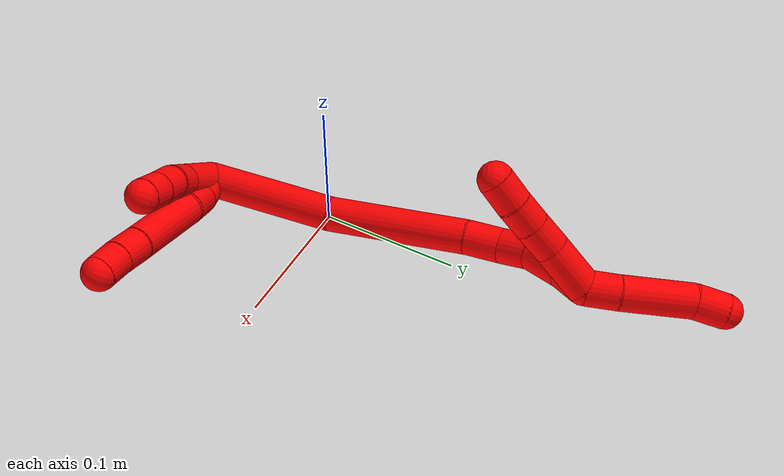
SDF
<sdf version="1.7">
 <world name="default">
  <model name="2">
   <static>0</static>
   <link name="2">
    <collision name="collision-cylinder-e_1_2_8">
     <pose>0.007385 0.0078 0.00383 -1.11438 0.704452 -0.45024</pose>
     <geometry><cylinder><radius>0.0125</radius><length>0.022808</length></cylinder></geometry>
     <surface>
      <friction><ode><mu>1.16</mu><mu2>1.16</mu2><slip1>0</slip1><slip2>0</slip2></ode></friction>
      <contact><ode><kp>1e+06</kp><kd>1</kd><max_vel>0</max_vel><min_depth>0.001</min_depth></ode></contact>
     </surface>
    </collision>
    <visual name="visual-cylinder-e_1_2_8">
     <pose>0.007385 0.0078 0.00383 -1.11438 0.704452 -0.45024</pose>
     <geometry><cylinder><radius>0.0125</radius><length>0.022808</length></cylinder></geometry>
     <material><ambient>1 0 0 1</ambient></material>
    </visual>
    <collision name="collision-cylinder-e_2_8_9">
     <pose>0.019351 0.02503 0.013365 -1.02669 0.393819 -0.223991</pose>
     <geometry><cylinder><radius>0.0125</radius><length>0.023871</length></cylinder></geometry>
     <surface>
      <friction><ode><mu>1.16</mu><mu2>1.16</mu2><slip1>0</slip1><slip2>0</slip2></ode></friction>
      <contact><ode><kp>1e+06</kp><kd>1</kd><max_vel>0</max_vel><min_depth>0.001</min_depth></ode></contact>
     </surface>
    </collision>
    <visual name="visual-cylinder-e_2_8_9">
     <pose>0.019351 0.02503 0.013365 -1.02669 0.393819 -0.223991</pose>
     <geometry><cylinder><radius>0.0125</radius><length>0.023871</length></cylinder></geometry>
     <material><ambient>1 0 0 1</ambient></material>
    </visual>
    <collision name="collision-cylinder-e_3_9_10">
     <pose>0.039786 0.054553 0.036384 -0.859576 0.538791 -0.251778</pose>
     <geometry><cylinder><radius>0.0125</radius><length>0.061802</length></cylinder></geometry>
     <surface>
      <friction><ode><mu>1.16</mu><mu2>1.16</mu2><slip1>0</slip1><slip2>0</slip2></ode></friction>
      <contact><ode><kp>1e+06</kp><kd>1</kd><max_vel>0</max_vel><min_depth>0.001</min_depth></ode></contact>
     </surface>
    </collision>
    <visual name="visual-cylinder-e_3_9_10">
     <pose>0.039786 0.054553 0.036384 -0.859576 0.538791 -0.251778</pose>
     <geometry><cylinder><radius>0.0125</radius><length>0.061802</length></cylinder></geometry>
     <material><ambient>1 0 0 1</ambient></material>
    </visual>
    <collision name="collision-cylinder-e_4_10_11">
     <pose>0.061627 0.080778 0.059992 -0.77227 0.597931 -0.249297</pose>
     <geometry><cylinder><radius>0.0125</radius><length>0.021265</length></cylinder></geometry>
     <surface>
      <friction><ode><mu>1.16</mu><mu2>1.16</mu2><slip1>0</slip1><slip2>0</slip2></ode></friction>
      <contact><ode><kp>1e+06</kp><kd>1</kd><max_vel>0</max_vel><min_depth>0.001</min_depth></ode></contact>
     </surface>
    </collision>
    <visual name="visual-cylinder-e_4_10_11">
     <pose>0.061627 0.080778 0.059992 -0.77227 0.597931 -0.249297</pose>
     <geometry><cylinder><radius>0.0125</radius><length>0.021265</length></cylinder></geometry>
     <material><ambient>1 0 0 1</ambient></material>
    </visual>
    <collision name="collision-cylinder-e_5_11_6">
     <pose>0.073728 0.092903 0.071695 -0.836646 0.648389 -0.296598</pose>
     <geometry><cylinder><radius>0.0125</radius><length>0.020254</length></cylinder></geometry>
     <surface>
      <friction><ode><mu>1.16</mu><mu2>1.16</mu2><slip1>0</slip1><slip2>0</slip2></ode></friction>
      <contact><ode><kp>1e+06</kp><kd>1</kd><max_vel>0</max_vel><min_depth>0.001</min_depth></ode></contact>
     </surface>
    </collision>
    <visual name="visual-cylinder-e_5_11_6">
     <pose>0.073728 0.092903 0.071695 -0.836646 0.648389 -0.296598</pose>
     <geometry><cylinder><radius>0.0125</radius><length>0.020254</length></cylinder></geometry>
     <material><ambient>1 0 0 1</ambient></material>
    </visual>
    <collision name="collision-cylinder-e_1_2_12">
     <pose>0.003735 0.013094 0.013229 -0.780297 0.19801 -0.081649</pose>
     <geometry><cylinder><radius>0.0125</radius><length>0.037968</length></cylinder></geometry>
     <surface>
      <friction><ode><mu>1.16</mu><mu2>1.16</mu2><slip1>0</slip1><slip2>0</slip2></ode></friction>
      <contact><ode><kp>1e+06</kp><kd>1</kd><max_vel>0</max_vel><min_depth>0.001</min_depth></ode></contact>
     </surface>
    </collision>
    <visual name="visual-cylinder-e_1_2_12">
     <pose>0.003735 0.013094 0.013229 -0.780297 0.19801 -0.081649</pose>
     <geometry><cylinder><radius>0.0125</radius><length>0.037968</length></cylinder></geometry>
     <material><ambient>1 0 0 1</ambient></material>
    </visual>
    <collision name="collision-cylinder-e_2_12_13">
     <pose>0.008737 0.034916 0.032529 -0.962932 0.118726 -0.062085</pose>
     <geometry><cylinder><radius>0.0125</radius><length>0.021415</length></cylinder></geometry>
     <surface>
      <friction><ode><mu>1.16</mu><mu2>1.16</mu2><slip1>0</slip1><slip2>0</slip2></ode></friction>
      <contact><ode><kp>1e+06</kp><kd>1</kd><max_vel>0</max_vel><min_depth>0.001</min_depth></ode></contact>
     </surface>
    </collision>
    <visual name="visual-cylinder-e_2_12_13">
     <pose>0.008737 0.034916 0.032529 -0.962932 0.118726 -0.062085</pose>
     <geometry><cylinder><radius>0.0125</radius><length>0.021415</length></cylinder></geometry>
     <material><ambient>1 0 0 1</ambient></material>
    </visual>
    <collision name="collision-cylinder-e_3_13_14">
     <pose>0.013559 0.051428 0.044324 -0.936854 0.352387 -0.179687</pose>
     <geometry><cylinder><radius>0.0125</radius><length>0.020588</length></cylinder></geometry>
     <surface>
      <friction><ode><mu>1.16</mu><mu2>1.16</mu2><slip1>0</slip1><slip2>0</slip2></ode></friction>
      <contact><ode><kp>1e+06</kp><kd>1</kd><max_vel>0</max_vel><min_depth>0.001</min_depth></ode></contact>
     </surface>
    </collision>
    <visual name="visual-cylinder-e_3_13_14">
     <pose>0.013559 0.051428 0.044324 -0.936854 0.352387 -0.179687</pose>
     <geometry><cylinder><radius>0.0125</radius><length>0.020588</length></cylinder></geometry>
     <material><ambient>1 0 0 1</ambient></material>
    </visual>
    <collision name="collision-cylinder-e_4_14_5">
     <pose>0.020455 0.066602 0.05592 -0.899321 0.340444 -0.165537</pose>
     <geometry><cylinder><radius>0.0125</radius><length>0.020028</length></cylinder></geometry>
     <surface>
      <friction><ode><mu>1.16</mu><mu2>1.16</mu2><slip1>0</slip1><slip2>0</slip2></ode></friction>
      <contact><ode><kp>1e+06</kp><kd>1</kd><max_vel>0</max_vel><min_depth>0.001</min_depth></ode></contact>
     </surface>
    </collision>
    <visual name="visual-cylinder-e_4_14_5">
     <pose>0.020455 0.066602 0.05592 -0.899321 0.340444 -0.165537</pose>
     <geometry><cylinder><radius>0.0125</radius><length>0.020028</length></cylinder></geometry>
     <material><ambient>1 0 0 1</ambient></material>
    </visual>
    <collision name="collision-cylinder-e_1_2_15">
     <pose>-0.004155 0.029169 -0.037575 -2.48149 -0.087131 0.253136</pose>
     <geometry><cylinder><radius>0.0125</radius><length>0.095498</length></cylinder></geometry>
     <surface>
      <friction><ode><mu>1.16</mu><mu2>1.16</mu2><slip1>0</slip1><slip2>0</slip2></ode></friction>
      <contact><ode><kp>1e+06</kp><kd>1</kd><max_vel>0</max_vel><min_depth>0.001</min_depth></ode></contact>
     </surface>
    </collision>
    <visual name="visual-cylinder-e_1_2_15">
     <pose>-0.004155 0.029169 -0.037575 -2.48149 -0.087131 0.253136</pose>
     <geometry><cylinder><radius>0.0125</radius><length>0.095498</length></cylinder></geometry>
     <material><ambient>1 0 0 1</ambient></material>
    </visual>
    <collision name="collision-cylinder-e_2_15_16">
     <pose>-0.018321 0.088752 -0.114489 -2.48342 -0.198662 0.56788</pose>
     <geometry><cylinder><radius>0.0125</radius><length>0.101446</length></cylinder></geometry>
     <surface>
      <friction><ode><mu>1.16</mu><mu2>1.16</mu2><slip1>0</slip1><slip2>0</slip2></ode></friction>
      <contact><ode><kp>1e+06</kp><kd>1</kd><max_vel>0</max_vel><min_depth>0.001</min_depth></ode></contact>
     </surface>
    </collision>
    <visual name="visual-cylinder-e_2_15_16">
     <pose>-0.018321 0.088752 -0.114489 -2.48342 -0.198662 0.56788</pose>
     <geometry><cylinder><radius>0.0125</radius><length>0.101446</length></cylinder></geometry>
     <material><ambient>1 0 0 1</ambient></material>
    </visual>
    <collision name="collision-cylinder-e_3_16_17">
     <pose>-0.029917 0.12649 -0.164395 -2.53567 -0.122692 0.388056</pose>
     <geometry><cylinder><radius>0.0125</radius><length>0.025909</length></cylinder></geometry>
     <surface>
      <friction><ode><mu>1.16</mu><mu2>1.16</mu2><slip1>0</slip1><slip2>0</slip2></ode></friction>
      <contact><ode><kp>1e+06</kp><kd>1</kd><max_vel>0</max_vel><min_depth>0.001</min_depth></ode></contact>
     </surface>
    </collision>
    <visual name="visual-cylinder-e_3_16_17">
     <pose>-0.029917 0.12649 -0.164395 -2.53567 -0.122692 0.388056</pose>
     <geometry><cylinder><radius>0.0125</radius><length>0.025909</length></cylinder></geometry>
     <material><ambient>1 0 0 1</ambient></material>
    </visual>
    <collision name="collision-cylinder-e_4_17_18">
     <pose>-0.033209 0.142824 -0.182066 -2.23827 -0.147649 0.302588</pose>
     <geometry><cylinder><radius>0.0125</radius><length>0.023199</length></cylinder></geometry>
     <surface>
      <friction><ode><mu>1.16</mu><mu2>1.16</mu2><slip1>0</slip1><slip2>0</slip2></ode></friction>
      <contact><ode><kp>1e+06</kp><kd>1</kd><max_vel>0</max_vel><min_depth>0.001</min_depth></ode></contact>
     </surface>
    </collision>
    <visual name="visual-cylinder-e_4_17_18">
     <pose>-0.033209 0.142824 -0.182066 -2.23827 -0.147649 0.302588</pose>
     <geometry><cylinder><radius>0.0125</radius><length>0.023199</length></cylinder></geometry>
     <material><ambient>1 0 0 1</ambient></material>
    </visual>
    <collision name="collision-cylinder-e_5_18_19">
     <pose>-0.032843 0.164444 -0.197126 -2.13382 0.13811 -0.249584</pose>
     <geometry><cylinder><radius>0.0125</radius><length>0.030107</length></cylinder></geometry>
     <surface>
      <friction><ode><mu>1.16</mu><mu2>1.16</mu2><slip1>0</slip1><slip2>0</slip2></ode></friction>
      <contact><ode><kp>1e+06</kp><kd>1</kd><max_vel>0</max_vel><min_depth>0.001</min_depth></ode></contact>
     </surface>
    </collision>
    <visual name="visual-cylinder-e_5_18_19">
     <pose>-0.032843 0.164444 -0.197126 -2.13382 0.13811 -0.249584</pose>
     <geometry><cylinder><radius>0.0125</radius><length>0.030107</length></cylinder></geometry>
     <material><ambient>1 0 0 1</ambient></material>
    </visual>
    <collision name="collision-cylinder-e_6_19_1">
     <pose>-0.028322 0.188264 -0.208311 -1.85102 0.206834 -0.274011</pose>
     <geometry><cylinder><radius>0.0125</radius><length>0.023841</length></cylinder></geometry>
     <surface>
      <friction><ode><mu>1.16</mu><mu2>1.16</mu2><slip1>0</slip1><slip2>0</slip2></ode></friction>
      <contact><ode><kp>1e+06</kp><kd>1</kd><max_vel>0</max_vel><min_depth>0.001</min_depth></ode></contact>
     </surface>
    </collision>
    <visual name="visual-cylinder-e_6_19_1">
     <pose>-0.028322 0.188264 -0.208311 -1.85102 0.206834 -0.274011</pose>
     <geometry><cylinder><radius>0.0125</radius><length>0.023841</length></cylinder></geometry>
     <material><ambient>1 0 0 1</ambient></material>
    </visual>
    <collision name="collision-cylinder-e_1_1_20">
     <pose>-0.03431 0.197565 -0.19576 0.120505 -0.487965 -0.030033</pose>
     <geometry><cylinder><radius>0.0125</radius><length>0.035985</length></cylinder></geometry>
     <surface>
      <friction><ode><mu>1.16</mu><mu2>1.16</mu2><slip1>0</slip1><slip2>0</slip2></ode></friction>
      <contact><ode><kp>1e+06</kp><kd>1</kd><max_vel>0</max_vel><min_depth>0.001</min_depth></ode></contact>
     </surface>
    </collision>
    <visual name="visual-cylinder-e_1_1_20">
     <pose>-0.03431 0.197565 -0.19576 0.120505 -0.487965 -0.030033</pose>
     <geometry><cylinder><radius>0.0125</radius><length>0.035985</length></cylinder></geometry>
     <material><ambient>1 0 0 1</ambient></material>
    </visual>
    <collision name="collision-cylinder-e_2_20_21">
     <pose>-0.047618 0.195947 -0.169705 -0.028465 -0.442562 0.006404</pose>
     <geometry><cylinder><radius>0.0125</radius><length>0.022755</length></cylinder></geometry>
     <surface>
      <friction><ode><mu>1.16</mu><mu2>1.16</mu2><slip1>0</slip1><slip2>0</slip2></ode></friction>
      <contact><ode><kp>1e+06</kp><kd>1</kd><max_vel>0</max_vel><min_depth>0.001</min_depth></ode></contact>
     </surface>
    </collision>
    <visual name="visual-cylinder-e_2_20_21">
     <pose>-0.047618 0.195947 -0.169705 -0.028465 -0.442562 0.006404</pose>
     <geometry><cylinder><radius>0.0125</radius><length>0.022755</length></cylinder></geometry>
     <material><ambient>1 0 0 1</ambient></material>
    </visual>
    <collision name="collision-cylinder-e_3_21_22">
     <pose>-0.056927 0.196656 -0.150323 -0.045772 -0.453034 0.010551</pose>
     <geometry><cylinder><radius>0.0125</radius><length>0.020274</length></cylinder></geometry>
     <surface>
      <friction><ode><mu>1.16</mu><mu2>1.16</mu2><slip1>0</slip1><slip2>0</slip2></ode></friction>
      <contact><ode><kp>1e+06</kp><kd>1</kd><max_vel>0</max_vel><min_depth>0.001</min_depth></ode></contact>
     </surface>
    </collision>
    <visual name="visual-cylinder-e_3_21_22">
     <pose>-0.056927 0.196656 -0.150323 -0.045772 -0.453034 0.010551</pose>
     <geometry><cylinder><radius>0.0125</radius><length>0.020274</length></cylinder></geometry>
     <material><ambient>1 0 0 1</ambient></material>
    </visual>
    <collision name="collision-cylinder-e_4_22_4">
     <pose>-0.066574 0.196819 -0.132114 0.027968 -0.519597 -0.007435</pose>
     <geometry><cylinder><radius>0.0125</radius><length>0.020986</length></cylinder></geometry>
     <surface>
      <friction><ode><mu>1.16</mu><mu2>1.16</mu2><slip1>0</slip1><slip2>0</slip2></ode></friction>
      <contact><ode><kp>1e+06</kp><kd>1</kd><max_vel>0</max_vel><min_depth>0.001</min_depth></ode></contact>
     </surface>
    </collision>
    <visual name="visual-cylinder-e_4_22_4">
     <pose>-0.066574 0.196819 -0.132114 0.027968 -0.519597 -0.007435</pose>
     <geometry><cylinder><radius>0.0125</radius><length>0.020986</length></cylinder></geometry>
     <material><ambient>1 0 0 1</ambient></material>
    </visual>
    <collision name="collision-cylinder-e_1_1_23">
     <pose>-0.028401 0.203034 -0.222605 -2.83051 -0.213989 1.20109</pose>
     <geometry><cylinder><radius>0.0125</radius><length>0.023795</length></cylinder></geometry>
     <surface>
      <friction><ode><mu>1.16</mu><mu2>1.16</mu2><slip1>0</slip1><slip2>0</slip2></ode></friction>
      <contact><ode><kp>1e+06</kp><kd>1</kd><max_vel>0</max_vel><min_depth>0.001</min_depth></ode></contact>
     </surface>
    </collision>
    <visual name="visual-cylinder-e_1_1_23">
     <pose>-0.028401 0.203034 -0.222605 -2.83051 -0.213989 1.20109</pose>
     <geometry><cylinder><radius>0.0125</radius><length>0.023795</length></cylinder></geometry>
     <material><ambient>1 0 0 1</ambient></material>
    </visual>
    <collision name="collision-cylinder-e_2_23_24">
     <pose>-0.037341 0.212429 -0.258731 -2.91275 -0.244299 1.63673</pose>
     <geometry><cylinder><radius>0.0125</radius><length>0.053032</length></cylinder></geometry>
     <surface>
      <friction><ode><mu>1.16</mu><mu2>1.16</mu2><slip1>0</slip1><slip2>0</slip2></ode></friction>
      <contact><ode><kp>1e+06</kp><kd>1</kd><max_vel>0</max_vel><min_depth>0.001</min_depth></ode></contact>
     </surface>
    </collision>
    <visual name="visual-cylinder-e_2_23_24">
     <pose>-0.037341 0.212429 -0.258731 -2.91275 -0.244299 1.63673</pose>
     <geometry><cylinder><radius>0.0125</radius><length>0.053032</length></cylinder></geometry>
     <material><ambient>1 0 0 1</ambient></material>
    </visual>
    <collision name="collision-cylinder-e_3_24_3">
     <pose>-0.044328 0.221279 -0.294962 -2.87814 -0.049548 0.369772</pose>
     <geometry><cylinder><radius>0.0125</radius><length>0.023173</length></cylinder></geometry>
     <surface>
      <friction><ode><mu>1.16</mu><mu2>1.16</mu2><slip1>0</slip1><slip2>0</slip2></ode></friction>
      <contact><ode><kp>1e+06</kp><kd>1</kd><max_vel>0</max_vel><min_depth>0.001</min_depth></ode></contact>
     </surface>
    </collision>
    <visual name="visual-cylinder-e_3_24_3">
     <pose>-0.044328 0.221279 -0.294962 -2.87814 -0.049548 0.369772</pose>
     <geometry><cylinder><radius>0.0125</radius><length>0.023173</length></cylinder></geometry>
     <material><ambient>1 0 0 1</ambient></material>
    </visual>
    <collision name="collision-sphere-3">
     <pose>-0.044902 0.224293 -0.306135 0 -0 0</pose>
     <geometry><sphere><radius>0.0125</radius></sphere></geometry>
     <surface>
      <friction><ode><mu>1.16</mu><mu2>1.16</mu2><slip1>0</slip1><slip2>0</slip2></ode></friction>
      <contact><ode><kp>1e+06</kp><kd>1</kd><max_vel>0</max_vel><min_depth>0.001</min_depth></ode></contact>
     </surface>
    </collision>
    <visual name="visual-sphere-3">
     <pose>-0.044902 0.224293 -0.306135 0 -0 0</pose>
     <geometry><sphere><radius>0.0125</radius></sphere></geometry>
     <material><ambient>1 0 0 1</ambient></material>
    </visual>
    <collision name="collision-sphere-24">
     <pose>-0.043755 0.218265 -0.28379 0 -0 0</pose>
     <geometry><sphere><radius>0.0125</radius></sphere></geometry>
     <surface>
      <friction><ode><mu>1.16</mu><mu2>1.16</mu2><slip1>0</slip1><slip2>0</slip2></ode></friction>
      <contact><ode><kp>1e+06</kp><kd>1</kd><max_vel>0</max_vel><min_depth>0.001</min_depth></ode></contact>
     </surface>
    </collision>
    <visual name="visual-sphere-24">
     <pose>-0.043755 0.218265 -0.28379 0 -0 0</pose>
     <geometry><sphere><radius>0.0125</radius></sphere></geometry>
     <material><ambient>1 0 0 1</ambient></material>
    </visual>
    <collision name="collision-sphere-23">
     <pose>-0.030927 0.206592 -0.233673 0 -0 0</pose>
     <geometry><sphere><radius>0.0125</radius></sphere></geometry>
     <surface>
      <friction><ode><mu>1.16</mu><mu2>1.16</mu2><slip1>0</slip1><slip2>0</slip2></ode></friction>
      <contact><ode><kp>1e+06</kp><kd>1</kd><max_vel>0</max_vel><min_depth>0.001</min_depth></ode></contact>
     </surface>
    </collision>
    <visual name="visual-sphere-23">
     <pose>-0.030927 0.206592 -0.233673 0 -0 0</pose>
     <geometry><sphere><radius>0.0125</radius></sphere></geometry>
     <material><ambient>1 0 0 1</ambient></material>
    </visual>
    <collision name="collision-sphere-4">
     <pose>-0.071784 0.196564 -0.123009 0 -0 0</pose>
     <geometry><sphere><radius>0.0125</radius></sphere></geometry>
     <surface>
      <friction><ode><mu>1.16</mu><mu2>1.16</mu2><slip1>0</slip1><slip2>0</slip2></ode></friction>
      <contact><ode><kp>1e+06</kp><kd>1</kd><max_vel>0</max_vel><min_depth>0.001</min_depth></ode></contact>
     </surface>
    </collision>
    <visual name="visual-sphere-4">
     <pose>-0.071784 0.196564 -0.123009 0 -0 0</pose>
     <geometry><sphere><radius>0.0125</radius></sphere></geometry>
     <material><ambient>1 0 0 1</ambient></material>
    </visual>
    <collision name="collision-sphere-22">
     <pose>-0.061364 0.197073 -0.141218 0 -0 0</pose>
     <geometry><sphere><radius>0.0125</radius></sphere></geometry>
     <surface>
      <friction><ode><mu>1.16</mu><mu2>1.16</mu2><slip1>0</slip1><slip2>0</slip2></ode></friction>
      <contact><ode><kp>1e+06</kp><kd>1</kd><max_vel>0</max_vel><min_depth>0.001</min_depth></ode></contact>
     </surface>
    </collision>
    <visual name="visual-sphere-22">
     <pose>-0.061364 0.197073 -0.141218 0 -0 0</pose>
     <geometry><sphere><radius>0.0125</radius></sphere></geometry>
     <material><ambient>1 0 0 1</ambient></material>
    </visual>
    <collision name="collision-sphere-21">
     <pose>-0.05249 0.196239 -0.159428 0 -0 0</pose>
     <geometry><sphere><radius>0.0125</radius></sphere></geometry>
     <surface>
      <friction><ode><mu>1.16</mu><mu2>1.16</mu2><slip1>0</slip1><slip2>0</slip2></ode></friction>
      <contact><ode><kp>1e+06</kp><kd>1</kd><max_vel>0</max_vel><min_depth>0.001</min_depth></ode></contact>
     </surface>
    </collision>
    <visual name="visual-sphere-21">
     <pose>-0.05249 0.196239 -0.159428 0 -0 0</pose>
     <geometry><sphere><radius>0.0125</radius></sphere></geometry>
     <material><ambient>1 0 0 1</ambient></material>
    </visual>
    <collision name="collision-sphere-20">
     <pose>-0.042745 0.195654 -0.179982 0 -0 0</pose>
     <geometry><sphere><radius>0.0125</radius></sphere></geometry>
     <surface>
      <friction><ode><mu>1.16</mu><mu2>1.16</mu2><slip1>0</slip1><slip2>0</slip2></ode></friction>
      <contact><ode><kp>1e+06</kp><kd>1</kd><max_vel>0</max_vel><min_depth>0.001</min_depth></ode></contact>
     </surface>
    </collision>
    <visual name="visual-sphere-20">
     <pose>-0.042745 0.195654 -0.179982 0 -0 0</pose>
     <geometry><sphere><radius>0.0125</radius></sphere></geometry>
     <material><ambient>1 0 0 1</ambient></material>
    </visual>
    <collision name="collision-sphere-6">
     <pose>0.079843 0.098895 0.077102 0 -0 0</pose>
     <geometry><sphere><radius>0.0125</radius></sphere></geometry>
     <surface>
      <friction><ode><mu>1.16</mu><mu2>1.16</mu2><slip1>0</slip1><slip2>0</slip2></ode></friction>
      <contact><ode><kp>1e+06</kp><kd>1</kd><max_vel>0</max_vel><min_depth>0.001</min_depth></ode></contact>
     </surface>
    </collision>
    <visual name="visual-sphere-6">
     <pose>0.079843 0.098895 0.077102 0 -0 0</pose>
     <geometry><sphere><radius>0.0125</radius></sphere></geometry>
     <material><ambient>1 0 0 1</ambient></material>
    </visual>
    <collision name="collision-sphere-11">
     <pose>0.067612 0.08691 0.066287 0 -0 0</pose>
     <geometry><sphere><radius>0.0125</radius></sphere></geometry>
     <surface>
      <friction><ode><mu>1.16</mu><mu2>1.16</mu2><slip1>0</slip1><slip2>0</slip2></ode></friction>
      <contact><ode><kp>1e+06</kp><kd>1</kd><max_vel>0</max_vel><min_depth>0.001</min_depth></ode></contact>
     </surface>
    </collision>
    <visual name="visual-sphere-11">
     <pose>0.067612 0.08691 0.066287 0 -0 0</pose>
     <geometry><sphere><radius>0.0125</radius></sphere></geometry>
     <material><ambient>1 0 0 1</ambient></material>
    </visual>
    <collision name="collision-sphere-10">
     <pose>0.055641 0.074647 0.053697 0 -0 0</pose>
     <geometry><sphere><radius>0.0125</radius></sphere></geometry>
     <surface>
      <friction><ode><mu>1.16</mu><mu2>1.16</mu2><slip1>0</slip1><slip2>0</slip2></ode></friction>
      <contact><ode><kp>1e+06</kp><kd>1</kd><max_vel>0</max_vel><min_depth>0.001</min_depth></ode></contact>
     </surface>
    </collision>
    <visual name="visual-sphere-10">
     <pose>0.055641 0.074647 0.053697 0 -0 0</pose>
     <geometry><sphere><radius>0.0125</radius></sphere></geometry>
     <material><ambient>1 0 0 1</ambient></material>
    </visual>
    <collision name="collision-sphere-9">
     <pose>0.023931 0.03446 0.01907 0 -0 0</pose>
     <geometry><sphere><radius>0.0125</radius></sphere></geometry>
     <surface>
      <friction><ode><mu>1.16</mu><mu2>1.16</mu2><slip1>0</slip1><slip2>0</slip2></ode></friction>
      <contact><ode><kp>1e+06</kp><kd>1</kd><max_vel>0</max_vel><min_depth>0.001</min_depth></ode></contact>
     </surface>
    </collision>
    <visual name="visual-sphere-9">
     <pose>0.023931 0.03446 0.01907 0 -0 0</pose>
     <geometry><sphere><radius>0.0125</radius></sphere></geometry>
     <material><ambient>1 0 0 1</ambient></material>
    </visual>
    <collision name="collision-sphere-2">
     <geometry><sphere><radius>0.0125</radius></sphere></geometry>
     <surface>
      <friction><ode><mu>1.16</mu><mu2>1.16</mu2><slip1>0</slip1><slip2>0</slip2></ode></friction>
      <contact><ode><kp>1e+06</kp><kd>1</kd><max_vel>0</max_vel><min_depth>0.001</min_depth></ode></contact>
     </surface>
    </collision>
    <visual name="visual-sphere-2">
     <geometry><sphere><radius>0.0125</radius></sphere></geometry>
     <material><ambient>1 0 0 1</ambient></material>
    </visual>
    <collision name="collision-sphere-19">
     <pose>-0.03077 0.177052 -0.205084 0 -0 0</pose>
     <geometry><sphere><radius>0.0125</radius></sphere></geometry>
     <surface>
      <friction><ode><mu>1.16</mu><mu2>1.16</mu2><slip1>0</slip1><slip2>0</slip2></ode></friction>
      <contact><ode><kp>1e+06</kp><kd>1</kd><max_vel>0</max_vel><min_depth>0.001</min_depth></ode></contact>
     </surface>
    </collision>
    <visual name="visual-sphere-19">
     <pose>-0.03077 0.177052 -0.205084 0 -0 0</pose>
     <geometry><sphere><radius>0.0125</radius></sphere></geometry>
     <material><ambient>1 0 0 1</ambient></material>
    </visual>
    <collision name="collision-sphere-8">
     <pose>0.014771 0.0156 0.007659 0 -0 0</pose>
     <geometry><sphere><radius>0.0125</radius></sphere></geometry>
     <surface>
      <friction><ode><mu>1.16</mu><mu2>1.16</mu2><slip1>0</slip1><slip2>0</slip2></ode></friction>
      <contact><ode><kp>1e+06</kp><kd>1</kd><max_vel>0</max_vel><min_depth>0.001</min_depth></ode></contact>
     </surface>
    </collision>
    <visual name="visual-sphere-8">
     <pose>0.014771 0.0156 0.007659 0 -0 0</pose>
     <geometry><sphere><radius>0.0125</radius></sphere></geometry>
     <material><ambient>1 0 0 1</ambient></material>
    </visual>
    <collision name="collision-sphere-12">
     <pose>0.007469 0.026189 0.026457 0 -0 0</pose>
     <geometry><sphere><radius>0.0125</radius></sphere></geometry>
     <surface>
      <friction><ode><mu>1.16</mu><mu2>1.16</mu2><slip1>0</slip1><slip2>0</slip2></ode></friction>
      <contact><ode><kp>1e+06</kp><kd>1</kd><max_vel>0</max_vel><min_depth>0.001</min_depth></ode></contact>
     </surface>
    </collision>
    <visual name="visual-sphere-12">
     <pose>0.007469 0.026189 0.026457 0 -0 0</pose>
     <geometry><sphere><radius>0.0125</radius></sphere></geometry>
     <material><ambient>1 0 0 1</ambient></material>
    </visual>
    <collision name="collision-sphere-13">
     <pose>0.010006 0.043644 0.038602 0 -0 0</pose>
     <geometry><sphere><radius>0.0125</radius></sphere></geometry>
     <surface>
      <friction><ode><mu>1.16</mu><mu2>1.16</mu2><slip1>0</slip1><slip2>0</slip2></ode></friction>
      <contact><ode><kp>1e+06</kp><kd>1</kd><max_vel>0</max_vel><min_depth>0.001</min_depth></ode></contact>
     </surface>
    </collision>
    <visual name="visual-sphere-13">
     <pose>0.010006 0.043644 0.038602 0 -0 0</pose>
     <geometry><sphere><radius>0.0125</radius></sphere></geometry>
     <material><ambient>1 0 0 1</ambient></material>
    </visual>
    <collision name="collision-sphere-14">
     <pose>0.017111 0.059212 0.050047 0 -0 0</pose>
     <geometry><sphere><radius>0.0125</radius></sphere></geometry>
     <surface>
      <friction><ode><mu>1.16</mu><mu2>1.16</mu2><slip1>0</slip1><slip2>0</slip2></ode></friction>
      <contact><ode><kp>1e+06</kp><kd>1</kd><max_vel>0</max_vel><min_depth>0.001</min_depth></ode></contact>
     </surface>
    </collision>
    <visual name="visual-sphere-14">
     <pose>0.017111 0.059212 0.050047 0 -0 0</pose>
     <geometry><sphere><radius>0.0125</radius></sphere></geometry>
     <material><ambient>1 0 0 1</ambient></material>
    </visual>
    <collision name="collision-sphere-5">
     <pose>0.023799 0.073993 0.061792 0 -0 0</pose>
     <geometry><sphere><radius>0.0125</radius></sphere></geometry>
     <surface>
      <friction><ode><mu>1.16</mu><mu2>1.16</mu2><slip1>0</slip1><slip2>0</slip2></ode></friction>
      <contact><ode><kp>1e+06</kp><kd>1</kd><max_vel>0</max_vel><min_depth>0.001</min_depth></ode></contact>
     </surface>
    </collision>
    <visual name="visual-sphere-5">
     <pose>0.023799 0.073993 0.061792 0 -0 0</pose>
     <geometry><sphere><radius>0.0125</radius></sphere></geometry>
     <material><ambient>1 0 0 1</ambient></material>
    </visual>
    <collision name="collision-sphere-15">
     <pose>-0.00831 0.058337 -0.075151 0 -0 0</pose>
     <geometry><sphere><radius>0.0125</radius></sphere></geometry>
     <surface>
      <friction><ode><mu>1.16</mu><mu2>1.16</mu2><slip1>0</slip1><slip2>0</slip2></ode></friction>
      <contact><ode><kp>1e+06</kp><kd>1</kd><max_vel>0</max_vel><min_depth>0.001</min_depth></ode></contact>
     </surface>
    </collision>
    <visual name="visual-sphere-15">
     <pose>-0.00831 0.058337 -0.075151 0 -0 0</pose>
     <geometry><sphere><radius>0.0125</radius></sphere></geometry>
     <material><ambient>1 0 0 1</ambient></material>
    </visual>
    <collision name="collision-sphere-16">
     <pose>-0.028331 0.119168 -0.153827 0 -0 0</pose>
     <geometry><sphere><radius>0.0125</radius></sphere></geometry>
     <surface>
      <friction><ode><mu>1.16</mu><mu2>1.16</mu2><slip1>0</slip1><slip2>0</slip2></ode></friction>
      <contact><ode><kp>1e+06</kp><kd>1</kd><max_vel>0</max_vel><min_depth>0.001</min_depth></ode></contact>
     </surface>
    </collision>
    <visual name="visual-sphere-16">
     <pose>-0.028331 0.119168 -0.153827 0 -0 0</pose>
     <geometry><sphere><radius>0.0125</radius></sphere></geometry>
     <material><ambient>1 0 0 1</ambient></material>
    </visual>
    <collision name="collision-sphere-17">
     <pose>-0.031502 0.133813 -0.174964 0 -0 0</pose>
     <geometry><sphere><radius>0.0125</radius></sphere></geometry>
     <surface>
      <friction><ode><mu>1.16</mu><mu2>1.16</mu2><slip1>0</slip1><slip2>0</slip2></ode></friction>
      <contact><ode><kp>1e+06</kp><kd>1</kd><max_vel>0</max_vel><min_depth>0.001</min_depth></ode></contact>
     </surface>
    </collision>
    <visual name="visual-sphere-17">
     <pose>-0.031502 0.133813 -0.174964 0 -0 0</pose>
     <geometry><sphere><radius>0.0125</radius></sphere></geometry>
     <material><ambient>1 0 0 1</ambient></material>
    </visual>
    <collision name="collision-sphere-18">
     <pose>-0.034915 0.151835 -0.189168 0 -0 0</pose>
     <geometry><sphere><radius>0.0125</radius></sphere></geometry>
     <surface>
      <friction><ode><mu>1.16</mu><mu2>1.16</mu2><slip1>0</slip1><slip2>0</slip2></ode></friction>
      <contact><ode><kp>1e+06</kp><kd>1</kd><max_vel>0</max_vel><min_depth>0.001</min_depth></ode></contact>
     </surface>
    </collision>
    <visual name="visual-sphere-18">
     <pose>-0.034915 0.151835 -0.189168 0 -0 0</pose>
     <geometry><sphere><radius>0.0125</radius></sphere></geometry>
     <material><ambient>1 0 0 1</ambient></material>
    </visual>
    <collision name="collision-sphere-1">
     <pose>-0.025874 0.199475 -0.211537 0 -0 0</pose>
     <geometry><sphere><radius>0.0125</radius></sphere></geometry>
     <surface>
      <friction><ode><mu>1.16</mu><mu2>1.16</mu2><slip1>0</slip1><slip2>0</slip2></ode></friction>
      <contact><ode><kp>1e+06</kp><kd>1</kd><max_vel>0</max_vel><min_depth>0.001</min_depth></ode></contact>
     </surface>
    </collision>
    <visual name="visual-sphere-1">
     <pose>-0.025874 0.199475 -0.211537 0 -0 0</pose>
     <geometry><sphere><radius>0.0125</radius></sphere></geometry>
     <material><ambient>1 0 0 1</ambient></material>
    </visual>
    <inertial>
     <pose>-0.009476 0.106817 -0.091403 0 -0 0</pose>
     <mass>0.75</mass>
     <inertia><ixx>0.00028</ixx><ixy>0</ixy><ixz>0</ixz><iyy>2.8e-05</iyy><iyz>0</iyz><izz>-0.00013</izz></inertia>
    </inertial>
   </link>
   <pose>0.018182 -0.089295 0.011496 0.83426 0.72126 0.005767</pose>
  </model>
 </world>
</sdf>
